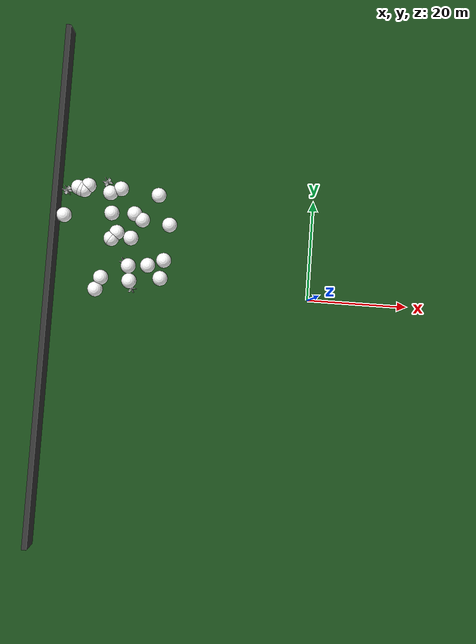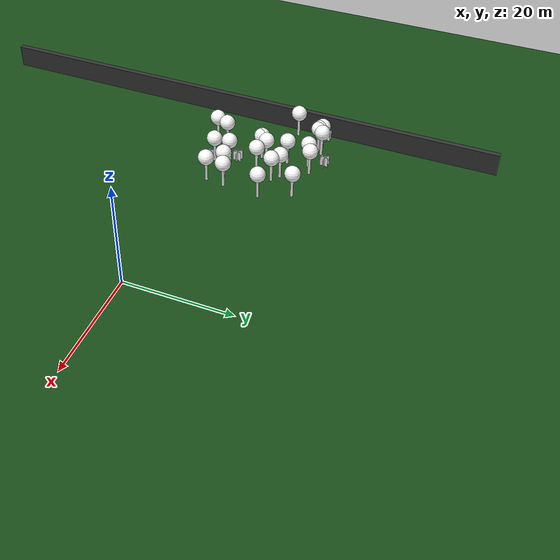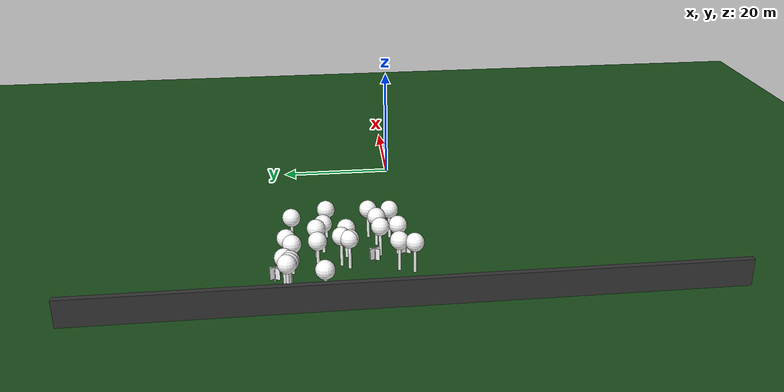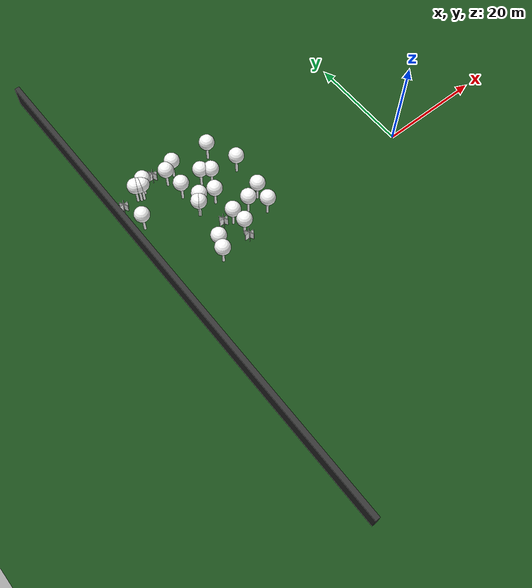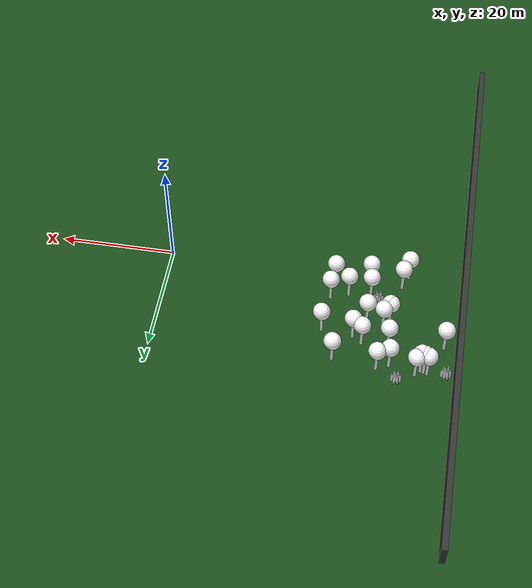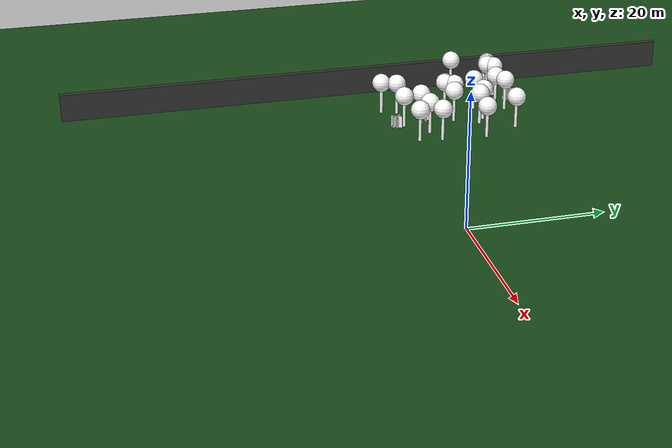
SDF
<sdf version="1.8">
 <world name="forest_world">
  <model name="fire_9">
   <pose>-41.93 21.05 1.00 0 0 0.00</pose>
   <static>true</static>
   <link name="fire_link">
    <visual name="fire_9_fire_main_0">
     <geometry><box><size>1.80 0.10 2.00</size></box></geometry>
     <material>
      <ambient>0.7 0.35 0.0 1</ambient>
      <diffuse>1 1 1 1</diffuse>
      <specular>0 0 0 1</specular>
      <emissive>0 0 0 1</emissive>
      <pbr>
       <metal><albedo_map>textures/fire.png</albedo_map><metalness>0.0</metalness><roughness>0.6</roughness></metal>
      </pbr>
     </material>
     <transparency>0.0</transparency>
     <cast_shadows>false</cast_shadows>
    </visual>
    <visual name="fire_9_fire_60_1">
     <pose>0.00 0.00 0.10 0 0 1.05</pose>
     <geometry><box><size>1.80 0.10 2.00</size></box></geometry>
     <material>
      <ambient>0.7 0.35 0.0 1</ambient>
      <diffuse>1 1 1 1</diffuse>
      <specular>0 0 0 1</specular>
      <emissive>0 0 0 1</emissive>
      <pbr>
       <metal><albedo_map>textures/fire.png</albedo_map><metalness>0.0</metalness><roughness>0.6</roughness></metal>
      </pbr>
     </material>
     <transparency>0.0</transparency>
     <cast_shadows>false</cast_shadows>
    </visual>
    <visual name="fire_9_fire_120_2">
     <pose>0.00 0.00 0.20 0 0 2.09</pose>
     <geometry><box><size>1.80 0.10 2.00</size></box></geometry>
     <material>
      <ambient>0.7 0.35 0.0 1</ambient>
      <diffuse>1 1 1 1</diffuse>
      <specular>0 0 0 1</specular>
      <emissive>0 0 0 1</emissive>
      <pbr>
       <metal><albedo_map>textures/fire.png</albedo_map><metalness>0.0</metalness><roughness>0.6</roughness></metal>
      </pbr>
     </material>
     <transparency>0.0</transparency>
     <cast_shadows>false</cast_shadows>
    </visual>
    <light type="point" name="fire_9_light_0">
     <pose>0.40 0.00 0.50 0 0 0</pose>
     <diffuse>1.0 0.7 0.3 1</diffuse>
     <specular>1.0 0.8 0.3 1</specular>
     <intensity>2</intensity>
     <attenuation>
      <range>2</range>
      <constant>0.1</constant>
      <linear>0.05</linear>
      <quadratic>0.02</quadratic>
     </attenuation>
     <cast_shadows>false</cast_shadows>
    </light>
    <light type="point" name="fire_9_light_1">
     <pose>-0.20 0.35 0.50 0 0 0</pose>
     <diffuse>1.0 0.7 0.3 1</diffuse>
     <specular>1.0 0.8 0.3 1</specular>
     <intensity>2</intensity>
     <attenuation>
      <range>2</range>
      <constant>0.1</constant>
      <linear>0.05</linear>
      <quadratic>0.02</quadratic>
     </attenuation>
     <cast_shadows>false</cast_shadows>
    </light>
    <light type="point" name="fire_9_light_2">
     <pose>-0.20 -0.35 0.50 0 0 0</pose>
     <diffuse>1.0 0.7 0.3 1</diffuse>
     <specular>1.0 0.8 0.3 1</specular>
     <intensity>2</intensity>
     <attenuation>
      <range>2</range>
      <constant>0.1</constant>
      <linear>0.05</linear>
      <quadratic>0.02</quadratic>
     </attenuation>
     <cast_shadows>false</cast_shadows>
    </light>
   </link>
   <plugin filename="libignition-gazebo-pose-publisher-system.so" name="ignition::gazebo::systems::PosePublisher">
    <frame_id>world</frame_id>
    <publish_link_pose>true</publish_link_pose>
    <use_pose_vector_msg>true</use_pose_vector_msg>
    <static_publisher>true</static_publisher>
    <static_update_frequency>1</static_update_frequency>
   </plugin>
  </model>
  <model name="fire_13">
   <pose>-37.36 5.14 1.00 0 0 0.00</pose>
   <static>true</static>
   <link name="fire_link">
    <visual name="fire_13_fire_main_0">
     <geometry><box><size>1.80 0.10 2.00</size></box></geometry>
     <material>
      <ambient>0.7 0.35 0.0 1</ambient>
      <diffuse>1 1 1 1</diffuse>
      <specular>0 0 0 1</specular>
      <emissive>0 0 0 1</emissive>
      <pbr>
       <metal><albedo_map>textures/fire.png</albedo_map><metalness>0.0</metalness><roughness>0.6</roughness></metal>
      </pbr>
     </material>
     <transparency>0.0</transparency>
     <cast_shadows>false</cast_shadows>
    </visual>
    <visual name="fire_13_fire_60_1">
     <pose>0.00 0.00 0.10 0 0 1.05</pose>
     <geometry><box><size>1.80 0.10 2.00</size></box></geometry>
     <material>
      <ambient>0.7 0.35 0.0 1</ambient>
      <diffuse>1 1 1 1</diffuse>
      <specular>0 0 0 1</specular>
      <emissive>0 0 0 1</emissive>
      <pbr>
       <metal><albedo_map>textures/fire.png</albedo_map><metalness>0.0</metalness><roughness>0.6</roughness></metal>
      </pbr>
     </material>
     <transparency>0.0</transparency>
     <cast_shadows>false</cast_shadows>
    </visual>
    <visual name="fire_13_fire_120_2">
     <pose>0.00 0.00 0.20 0 0 2.09</pose>
     <geometry><box><size>1.80 0.10 2.00</size></box></geometry>
     <material>
      <ambient>0.7 0.35 0.0 1</ambient>
      <diffuse>1 1 1 1</diffuse>
      <specular>0 0 0 1</specular>
      <emissive>0 0 0 1</emissive>
      <pbr>
       <metal><albedo_map>textures/fire.png</albedo_map><metalness>0.0</metalness><roughness>0.6</roughness></metal>
      </pbr>
     </material>
     <transparency>0.0</transparency>
     <cast_shadows>false</cast_shadows>
    </visual>
    <light type="point" name="fire_13_light_0">
     <pose>0.40 0.00 0.50 0 0 0</pose>
     <diffuse>1.0 0.7 0.3 1</diffuse>
     <specular>1.0 0.8 0.3 1</specular>
     <intensity>2</intensity>
     <attenuation>
      <range>2</range>
      <constant>0.1</constant>
      <linear>0.05</linear>
      <quadratic>0.02</quadratic>
     </attenuation>
     <cast_shadows>false</cast_shadows>
    </light>
    <light type="point" name="fire_13_light_1">
     <pose>-0.20 0.35 0.50 0 0 0</pose>
     <diffuse>1.0 0.7 0.3 1</diffuse>
     <specular>1.0 0.8 0.3 1</specular>
     <intensity>2</intensity>
     <attenuation>
      <range>2</range>
      <constant>0.1</constant>
      <linear>0.05</linear>
      <quadratic>0.02</quadratic>
     </attenuation>
     <cast_shadows>false</cast_shadows>
    </light>
    <light type="point" name="fire_13_light_2">
     <pose>-0.20 -0.35 0.50 0 0 0</pose>
     <diffuse>1.0 0.7 0.3 1</diffuse>
     <specular>1.0 0.8 0.3 1</specular>
     <intensity>2</intensity>
     <attenuation>
      <range>2</range>
      <constant>0.1</constant>
      <linear>0.05</linear>
      <quadratic>0.02</quadratic>
     </attenuation>
     <cast_shadows>false</cast_shadows>
    </light>
   </link>
   <plugin filename="libignition-gazebo-pose-publisher-system.so" name="ignition::gazebo::systems::PosePublisher">
    <frame_id>world</frame_id>
    <publish_link_pose>true</publish_link_pose>
    <use_pose_vector_msg>true</use_pose_vector_msg>
    <static_publisher>true</static_publisher>
    <static_update_frequency>1</static_update_frequency>
   </plugin>
  </model>
  <model name="fire_14">
   <pose>-35.51 -0.08 1.00 0 0 0.00</pose>
   <static>true</static>
   <link name="fire_link">
    <visual name="fire_14_fire_main_0">
     <geometry><box><size>1.80 0.10 2.00</size></box></geometry>
     <material>
      <ambient>0.7 0.35 0.0 1</ambient>
      <diffuse>1 1 1 1</diffuse>
      <specular>0 0 0 1</specular>
      <emissive>0 0 0 1</emissive>
      <pbr>
       <metal><albedo_map>textures/fire.png</albedo_map><metalness>0.0</metalness><roughness>0.6</roughness></metal>
      </pbr>
     </material>
     <transparency>0.0</transparency>
     <cast_shadows>false</cast_shadows>
    </visual>
    <visual name="fire_14_fire_60_1">
     <pose>0.00 0.00 0.10 0 0 1.05</pose>
     <geometry><box><size>1.80 0.10 2.00</size></box></geometry>
     <material>
      <ambient>0.7 0.35 0.0 1</ambient>
      <diffuse>1 1 1 1</diffuse>
      <specular>0 0 0 1</specular>
      <emissive>0 0 0 1</emissive>
      <pbr>
       <metal><albedo_map>textures/fire.png</albedo_map><metalness>0.0</metalness><roughness>0.6</roughness></metal>
      </pbr>
     </material>
     <transparency>0.0</transparency>
     <cast_shadows>false</cast_shadows>
    </visual>
    <visual name="fire_14_fire_120_2">
     <pose>0.00 0.00 0.20 0 0 2.09</pose>
     <geometry><box><size>1.80 0.10 2.00</size></box></geometry>
     <material>
      <ambient>0.7 0.35 0.0 1</ambient>
      <diffuse>1 1 1 1</diffuse>
      <specular>0 0 0 1</specular>
      <emissive>0 0 0 1</emissive>
      <pbr>
       <metal><albedo_map>textures/fire.png</albedo_map><metalness>0.0</metalness><roughness>0.6</roughness></metal>
      </pbr>
     </material>
     <transparency>0.0</transparency>
     <cast_shadows>false</cast_shadows>
    </visual>
    <light type="point" name="fire_14_light_0">
     <pose>0.40 0.00 0.50 0 0 0</pose>
     <diffuse>1.0 0.7 0.3 1</diffuse>
     <specular>1.0 0.8 0.3 1</specular>
     <intensity>2</intensity>
     <attenuation>
      <range>2</range>
      <constant>0.1</constant>
      <linear>0.05</linear>
      <quadratic>0.02</quadratic>
     </attenuation>
     <cast_shadows>false</cast_shadows>
    </light>
    <light type="point" name="fire_14_light_1">
     <pose>-0.20 0.35 0.50 0 0 0</pose>
     <diffuse>1.0 0.7 0.3 1</diffuse>
     <specular>1.0 0.8 0.3 1</specular>
     <intensity>2</intensity>
     <attenuation>
      <range>2</range>
      <constant>0.1</constant>
      <linear>0.05</linear>
      <quadratic>0.02</quadratic>
     </attenuation>
     <cast_shadows>false</cast_shadows>
    </light>
    <light type="point" name="fire_14_light_2">
     <pose>-0.20 -0.35 0.50 0 0 0</pose>
     <diffuse>1.0 0.7 0.3 1</diffuse>
     <specular>1.0 0.8 0.3 1</specular>
     <intensity>2</intensity>
     <attenuation>
      <range>2</range>
      <constant>0.1</constant>
      <linear>0.05</linear>
      <quadratic>0.02</quadratic>
     </attenuation>
     <cast_shadows>false</cast_shadows>
    </light>
   </link>
   <plugin filename="libignition-gazebo-pose-publisher-system.so" name="ignition::gazebo::systems::PosePublisher">
    <frame_id>world</frame_id>
    <publish_link_pose>true</publish_link_pose>
    <use_pose_vector_msg>true</use_pose_vector_msg>
    <static_publisher>true</static_publisher>
    <static_update_frequency>1</static_update_frequency>
   </plugin>
  </model>
  <model name="fire_43">
   <pose>-49.95 18.90 1.00 0 0 0.00</pose>
   <static>true</static>
   <link name="fire_link">
    <visual name="fire_43_fire_main_0">
     <geometry><box><size>1.80 0.10 2.00</size></box></geometry>
     <material>
      <ambient>0.7 0.35 0.0 1</ambient>
      <diffuse>1 1 1 1</diffuse>
      <specular>0 0 0 1</specular>
      <emissive>0 0 0 1</emissive>
      <pbr>
       <metal><albedo_map>textures/fire.png</albedo_map><metalness>0.0</metalness><roughness>0.6</roughness></metal>
      </pbr>
     </material>
     <transparency>0.0</transparency>
     <cast_shadows>false</cast_shadows>
    </visual>
    <visual name="fire_43_fire_60_1">
     <pose>0.00 0.00 0.10 0 0 1.05</pose>
     <geometry><box><size>1.80 0.10 2.00</size></box></geometry>
     <material>
      <ambient>0.7 0.35 0.0 1</ambient>
      <diffuse>1 1 1 1</diffuse>
      <specular>0 0 0 1</specular>
      <emissive>0 0 0 1</emissive>
      <pbr>
       <metal><albedo_map>textures/fire.png</albedo_map><metalness>0.0</metalness><roughness>0.6</roughness></metal>
      </pbr>
     </material>
     <transparency>0.0</transparency>
     <cast_shadows>false</cast_shadows>
    </visual>
    <visual name="fire_43_fire_120_2">
     <pose>0.00 0.00 0.20 0 0 2.09</pose>
     <geometry><box><size>1.80 0.10 2.00</size></box></geometry>
     <material>
      <ambient>0.7 0.35 0.0 1</ambient>
      <diffuse>1 1 1 1</diffuse>
      <specular>0 0 0 1</specular>
      <emissive>0 0 0 1</emissive>
      <pbr>
       <metal><albedo_map>textures/fire.png</albedo_map><metalness>0.0</metalness><roughness>0.6</roughness></metal>
      </pbr>
     </material>
     <transparency>0.0</transparency>
     <cast_shadows>false</cast_shadows>
    </visual>
    <light type="point" name="fire_43_light_0">
     <pose>0.40 0.00 0.50 0 0 0</pose>
     <diffuse>1.0 0.7 0.3 1</diffuse>
     <specular>1.0 0.8 0.3 1</specular>
     <intensity>2</intensity>
     <attenuation>
      <range>2</range>
      <constant>0.1</constant>
      <linear>0.05</linear>
      <quadratic>0.02</quadratic>
     </attenuation>
     <cast_shadows>false</cast_shadows>
    </light>
    <light type="point" name="fire_43_light_1">
     <pose>-0.20 0.35 0.50 0 0 0</pose>
     <diffuse>1.0 0.7 0.3 1</diffuse>
     <specular>1.0 0.8 0.3 1</specular>
     <intensity>2</intensity>
     <attenuation>
      <range>2</range>
      <constant>0.1</constant>
      <linear>0.05</linear>
      <quadratic>0.02</quadratic>
     </attenuation>
     <cast_shadows>false</cast_shadows>
    </light>
    <light type="point" name="fire_43_light_2">
     <pose>-0.20 -0.35 0.50 0 0 0</pose>
     <diffuse>1.0 0.7 0.3 1</diffuse>
     <specular>1.0 0.8 0.3 1</specular>
     <intensity>2</intensity>
     <attenuation>
      <range>2</range>
      <constant>0.1</constant>
      <linear>0.05</linear>
      <quadratic>0.02</quadratic>
     </attenuation>
     <cast_shadows>false</cast_shadows>
    </light>
   </link>
   <plugin filename="libignition-gazebo-pose-publisher-system.so" name="ignition::gazebo::systems::PosePublisher">
    <frame_id>world</frame_id>
    <publish_link_pose>true</publish_link_pose>
    <use_pose_vector_msg>true</use_pose_vector_msg>
    <static_publisher>true</static_publisher>
    <static_update_frequency>1</static_update_frequency>
   </plugin>
  </model>
  <model name="tree_simple493">
   <static>1</static>
   <link name="link">
    <pose>0 0 0.1 0 -0 0</pose>
    <collision name="collision_trunk">
     <pose>0 0 2 0 -0 0</pose>
     <geometry><cylinder><radius>0.25</radius><length>4</length></cylinder></geometry>
    </collision>
    <collision name="collision_treetop">
     <pose>0 0 5.2 0 -0 0</pose>
     <geometry><sphere><radius>1.5</radius></sphere></geometry>
    </collision>
    <visual name="trunk">
     <pose>0 0 2 0 -0 0</pose>
     <geometry><cylinder><radius>0.25</radius><length>4</length></cylinder></geometry>
     <material>
      <ambient>0.5 0.5 0.5 1</ambient>
      <diffuse>1.0 1.0 1.0 1</diffuse>
      <specular>0.0 0.0 0.0 1</specular>
      <pbr>
       <metal>
        <albedo_map>../worlds/textures/tree_simple_trunk.jpg</albedo_map>
        <metalness>0.0</metalness>
        <roughness>0.8</roughness>
       </metal>
      </pbr>
     </material>
    </visual>
    <visual name="treetop">
     <pose>0 0 5.2 0 -0 0</pose>
     <geometry><sphere><radius>1.5</radius></sphere></geometry>
     <material>
      <ambient>0.5 0.5 0.5 1</ambient>
      <diffuse>1.0 1.0 1.0 1</diffuse>
      <specular>0.0 0.0 0.0 1</specular>
      <pbr>
       <metal>
        <albedo_map>../worlds/textures/tree_simple_treetop.jpg</albedo_map>
        <metalness>0.0</metalness>
        <roughness>0.9</roughness>
       </metal>
      </pbr>
     </material>
    </visual>
   </link>
   <pose>-30.9686104206 18.3944298941 0 0 -0 0</pose>
  </model>
  <model name="tree_simple476">
   <static>1</static>
   <link name="link">
    <pose>0 0 0.1 0 -0 0</pose>
    <collision name="collision_trunk">
     <pose>0 0 2 0 -0 0</pose>
     <geometry><cylinder><radius>0.25</radius><length>4</length></cylinder></geometry>
    </collision>
    <collision name="collision_treetop">
     <pose>0 0 5.2 0 -0 0</pose>
     <geometry><sphere><radius>1.5</radius></sphere></geometry>
    </collision>
    <visual name="trunk">
     <pose>0 0 2 0 -0 0</pose>
     <geometry><cylinder><radius>0.25</radius><length>4</length></cylinder></geometry>
     <material>
      <ambient>0.5 0.5 0.5 1</ambient>
      <diffuse>1.0 1.0 1.0 1</diffuse>
      <specular>0.0 0.0 0.0 1</specular>
      <pbr>
       <metal>
        <albedo_map>../worlds/textures/tree_simple_trunk.jpg</albedo_map>
        <metalness>0.0</metalness>
        <roughness>0.8</roughness>
       </metal>
      </pbr>
     </material>
    </visual>
    <visual name="treetop">
     <pose>0 0 5.2 0 -0 0</pose>
     <geometry><sphere><radius>1.5</radius></sphere></geometry>
     <material>
      <ambient>0.5 0.5 0.5 1</ambient>
      <diffuse>1.0 1.0 1.0 1</diffuse>
      <specular>0.0 0.0 0.0 1</specular>
      <pbr>
       <metal>
        <albedo_map>../worlds/textures/tree_simple_treetop.jpg</albedo_map>
        <metalness>0.0</metalness>
        <roughness>0.9</roughness>
       </metal>
      </pbr>
     </material>
    </visual>
   </link>
   <pose>-40.490555579 18.243153787 0 0 -0 0</pose>
  </model>
  <model name="tree_simple467">
   <static>1</static>
   <link name="link">
    <pose>0 0 0.1 0 -0 0</pose>
    <collision name="collision_trunk">
     <pose>0 0 2 0 -0 0</pose>
     <geometry><cylinder><radius>0.25</radius><length>4</length></cylinder></geometry>
    </collision>
    <collision name="collision_treetop">
     <pose>0 0 5.2 0 -0 0</pose>
     <geometry><sphere><radius>1.5</radius></sphere></geometry>
    </collision>
    <visual name="trunk">
     <pose>0 0 2 0 -0 0</pose>
     <geometry><cylinder><radius>0.25</radius><length>4</length></cylinder></geometry>
     <material>
      <ambient>0.5 0.5 0.5 1</ambient>
      <diffuse>1.0 1.0 1.0 1</diffuse>
      <specular>0.0 0.0 0.0 1</specular>
      <pbr>
       <metal>
        <albedo_map>../worlds/textures/tree_simple_trunk.jpg</albedo_map>
        <metalness>0.0</metalness>
        <roughness>0.8</roughness>
       </metal>
      </pbr>
     </material>
    </visual>
    <visual name="treetop">
     <pose>0 0 5.2 0 -0 0</pose>
     <geometry><sphere><radius>1.5</radius></sphere></geometry>
     <material>
      <ambient>0.5 0.5 0.5 1</ambient>
      <diffuse>1.0 1.0 1.0 1</diffuse>
      <specular>0.0 0.0 0.0 1</specular>
      <pbr>
       <metal>
        <albedo_map>../worlds/textures/tree_simple_treetop.jpg</albedo_map>
        <metalness>0.0</metalness>
        <roughness>0.9</roughness>
       </metal>
      </pbr>
     </material>
    </visual>
   </link>
   <pose>-38.4435588212 19.1731926836 0 0 -0 0</pose>
  </model>
  <model name="tree_simple455">
   <static>1</static>
   <link name="link">
    <pose>0 0 0.1 0 -0 0</pose>
    <collision name="collision_trunk">
     <pose>0 0 2 0 -0 0</pose>
     <geometry><cylinder><radius>0.25</radius><length>4</length></cylinder></geometry>
    </collision>
    <collision name="collision_treetop">
     <pose>0 0 5.2 0 -0 0</pose>
     <geometry><sphere><radius>1.5</radius></sphere></geometry>
    </collision>
    <visual name="trunk">
     <pose>0 0 2 0 -0 0</pose>
     <geometry><cylinder><radius>0.25</radius><length>4</length></cylinder></geometry>
     <material>
      <ambient>0.5 0.5 0.5 1</ambient>
      <diffuse>1.0 1.0 1.0 1</diffuse>
      <specular>0.0 0.0 0.0 1</specular>
      <pbr>
       <metal>
        <albedo_map>../worlds/textures/tree_simple_trunk.jpg</albedo_map>
        <metalness>0.0</metalness>
        <roughness>0.8</roughness>
       </metal>
      </pbr>
     </material>
    </visual>
    <visual name="treetop">
     <pose>0 0 5.2 0 -0 0</pose>
     <geometry><sphere><radius>1.5</radius></sphere></geometry>
     <material>
      <ambient>0.5 0.5 0.5 1</ambient>
      <diffuse>1.0 1.0 1.0 1</diffuse>
      <specular>0.0 0.0 0.0 1</specular>
      <pbr>
       <metal>
        <albedo_map>../worlds/textures/tree_simple_treetop.jpg</albedo_map>
        <metalness>0.0</metalness>
        <roughness>0.9</roughness>
       </metal>
      </pbr>
     </material>
    </visual>
   </link>
   <pose>-32.1346913749 4.45623468988 0 0 -0 0</pose>
  </model>
  <model name="tree_simple437">
   <static>1</static>
   <link name="link">
    <pose>0 0 0.1 0 -0 0</pose>
    <collision name="collision_trunk">
     <pose>0 0 2 0 -0 0</pose>
     <geometry><cylinder><radius>0.25</radius><length>4</length></cylinder></geometry>
    </collision>
    <collision name="collision_treetop">
     <pose>0 0 5.2 0 -0 0</pose>
     <geometry><sphere><radius>1.5</radius></sphere></geometry>
    </collision>
    <visual name="trunk">
     <pose>0 0 2 0 -0 0</pose>
     <geometry><cylinder><radius>0.25</radius><length>4</length></cylinder></geometry>
     <material>
      <ambient>0.5 0.5 0.5 1</ambient>
      <diffuse>1.0 1.0 1.0 1</diffuse>
      <specular>0.0 0.0 0.0 1</specular>
      <pbr>
       <metal>
        <albedo_map>../worlds/textures/tree_simple_trunk.jpg</albedo_map>
        <metalness>0.0</metalness>
        <roughness>0.8</roughness>
       </metal>
      </pbr>
     </material>
    </visual>
    <visual name="treetop">
     <pose>0 0 5.2 0 -0 0</pose>
     <geometry><sphere><radius>1.5</radius></sphere></geometry>
     <material>
      <ambient>0.5 0.5 0.5 1</ambient>
      <diffuse>1.0 1.0 1.0 1</diffuse>
      <specular>0.0 0.0 0.0 1</specular>
      <pbr>
       <metal>
        <albedo_map>../worlds/textures/tree_simple_treetop.jpg</albedo_map>
        <metalness>0.0</metalness>
        <roughness>0.9</roughness>
       </metal>
      </pbr>
     </material>
    </visual>
   </link>
   <pose>-39.7170299969 9.24665194356 0 0 -0 0</pose>
  </model>
  <model name="tree_simple420">
   <static>1</static>
   <link name="link">
    <pose>0 0 0.1 0 -0 0</pose>
    <collision name="collision_trunk">
     <pose>0 0 2 0 -0 0</pose>
     <geometry><cylinder><radius>0.25</radius><length>4</length></cylinder></geometry>
    </collision>
    <collision name="collision_treetop">
     <pose>0 0 5.2 0 -0 0</pose>
     <geometry><sphere><radius>1.5</radius></sphere></geometry>
    </collision>
    <visual name="trunk">
     <pose>0 0 2 0 -0 0</pose>
     <geometry><cylinder><radius>0.25</radius><length>4</length></cylinder></geometry>
     <material>
      <ambient>0.5 0.5 0.5 1</ambient>
      <diffuse>1.0 1.0 1.0 1</diffuse>
      <specular>0.0 0.0 0.0 1</specular>
      <pbr>
       <metal>
        <albedo_map>../worlds/textures/tree_simple_trunk.jpg</albedo_map>
        <metalness>0.0</metalness>
        <roughness>0.8</roughness>
       </metal>
      </pbr>
     </material>
    </visual>
    <visual name="treetop">
     <pose>0 0 5.2 0 -0 0</pose>
     <geometry><sphere><radius>1.5</radius></sphere></geometry>
     <material>
      <ambient>0.5 0.5 0.5 1</ambient>
      <diffuse>1.0 1.0 1.0 1</diffuse>
      <specular>0.0 0.0 0.0 1</specular>
      <pbr>
       <metal>
        <albedo_map>../worlds/textures/tree_simple_treetop.jpg</albedo_map>
        <metalness>0.0</metalness>
        <roughness>0.9</roughness>
       </metal>
      </pbr>
     </material>
    </visual>
   </link>
   <pose>-46.8738530937 18.9140158148 0 0 -0 0</pose>
  </model>
  <model name="tree_simple383">
   <static>1</static>
   <link name="link">
    <pose>0 0 0.1 0 -0 0</pose>
    <collision name="collision_trunk">
     <pose>0 0 2 0 -0 0</pose>
     <geometry><cylinder><radius>0.25</radius><length>4</length></cylinder></geometry>
    </collision>
    <collision name="collision_treetop">
     <pose>0 0 5.2 0 -0 0</pose>
     <geometry><sphere><radius>1.5</radius></sphere></geometry>
    </collision>
    <visual name="trunk">
     <pose>0 0 2 0 -0 0</pose>
     <geometry><cylinder><radius>0.25</radius><length>4</length></cylinder></geometry>
     <material>
      <ambient>0.5 0.5 0.5 1</ambient>
      <diffuse>1.0 1.0 1.0 1</diffuse>
      <specular>0.0 0.0 0.0 1</specular>
      <pbr>
       <metal>
        <albedo_map>../worlds/textures/tree_simple_trunk.jpg</albedo_map>
        <metalness>0.0</metalness>
        <roughness>0.8</roughness>
       </metal>
      </pbr>
     </material>
    </visual>
    <visual name="treetop">
     <pose>0 0 5.2 0 -0 0</pose>
     <geometry><sphere><radius>1.5</radius></sphere></geometry>
     <material>
      <ambient>0.5 0.5 0.5 1</ambient>
      <diffuse>1.0 1.0 1.0 1</diffuse>
      <specular>0.0 0.0 0.0 1</specular>
      <pbr>
       <metal>
        <albedo_map>../worlds/textures/tree_simple_treetop.jpg</albedo_map>
        <metalness>0.0</metalness>
        <roughness>0.9</roughness>
       </metal>
      </pbr>
     </material>
    </visual>
   </link>
   <pose>-39.6589333601 9.20891740709 0 0 -0 0</pose>
  </model>
  <model name="tree_simple333">
   <static>1</static>
   <link name="link">
    <pose>0 0 0.1 0 -0 0</pose>
    <collision name="collision_trunk">
     <pose>0 0 2 0 -0 0</pose>
     <geometry><cylinder><radius>0.25</radius><length>4</length></cylinder></geometry>
    </collision>
    <collision name="collision_treetop">
     <pose>0 0 5.2 0 -0 0</pose>
     <geometry><sphere><radius>1.5</radius></sphere></geometry>
    </collision>
    <visual name="trunk">
     <pose>0 0 2 0 -0 0</pose>
     <geometry><cylinder><radius>0.25</radius><length>4</length></cylinder></geometry>
     <material>
      <ambient>0.5 0.5 0.5 1</ambient>
      <diffuse>1.0 1.0 1.0 1</diffuse>
      <specular>0.0 0.0 0.0 1</specular>
      <pbr>
       <metal>
        <albedo_map>../worlds/textures/tree_simple_trunk.jpg</albedo_map>
        <metalness>0.0</metalness>
        <roughness>0.8</roughness>
       </metal>
      </pbr>
     </material>
    </visual>
    <visual name="treetop">
     <pose>0 0 5.2 0 -0 0</pose>
     <geometry><sphere><radius>1.5</radius></sphere></geometry>
     <material>
      <ambient>0.5 0.5 0.5 1</ambient>
      <diffuse>1.0 1.0 1.0 1</diffuse>
      <specular>0.0 0.0 0.0 1</specular>
      <pbr>
       <metal>
        <albedo_map>../worlds/textures/tree_simple_treetop.jpg</albedo_map>
        <metalness>0.0</metalness>
        <roughness>0.9</roughness>
       </metal>
      </pbr>
     </material>
    </visual>
   </link>
   <pose>-39.9457212117 14.2708629915 0 0 -0 0</pose>
  </model>
  <model name="tree_simple289">
   <static>1</static>
   <link name="link">
    <pose>0 0 0.1 0 -0 0</pose>
    <collision name="collision_trunk">
     <pose>0 0 2 0 -0 0</pose>
     <geometry><cylinder><radius>0.25</radius><length>4</length></cylinder></geometry>
    </collision>
    <collision name="collision_treetop">
     <pose>0 0 5.2 0 -0 0</pose>
     <geometry><sphere><radius>1.5</radius></sphere></geometry>
    </collision>
    <visual name="trunk">
     <pose>0 0 2 0 -0 0</pose>
     <geometry><cylinder><radius>0.25</radius><length>4</length></cylinder></geometry>
     <material>
      <ambient>0.5 0.5 0.5 1</ambient>
      <diffuse>1.0 1.0 1.0 1</diffuse>
      <specular>0.0 0.0 0.0 1</specular>
      <pbr>
       <metal>
        <albedo_map>../worlds/textures/tree_simple_trunk.jpg</albedo_map>
        <metalness>0.0</metalness>
        <roughness>0.8</roughness>
       </metal>
      </pbr>
     </material>
    </visual>
    <visual name="treetop">
     <pose>0 0 5.2 0 -0 0</pose>
     <geometry><sphere><radius>1.5</radius></sphere></geometry>
     <material>
      <ambient>0.5 0.5 0.5 1</ambient>
      <diffuse>1.0 1.0 1.0 1</diffuse>
      <specular>0.0 0.0 0.0 1</specular>
      <pbr>
       <metal>
        <albedo_map>../worlds/textures/tree_simple_treetop.jpg</albedo_map>
        <metalness>0.0</metalness>
        <roughness>0.9</roughness>
       </metal>
      </pbr>
     </material>
    </visual>
   </link>
   <pose>-35.9302757768 4.10324936235 0 0 -0 0</pose>
  </model>
  <model name="tree_simple252">
   <static>1</static>
   <link name="link">
    <pose>0 0 0.1 0 -0 0</pose>
    <collision name="collision_trunk">
     <pose>0 0 2 0 -0 0</pose>
     <geometry><cylinder><radius>0.25</radius><length>4</length></cylinder></geometry>
    </collision>
    <collision name="collision_treetop">
     <pose>0 0 5.2 0 -0 0</pose>
     <geometry><sphere><radius>1.5</radius></sphere></geometry>
    </collision>
    <visual name="trunk">
     <pose>0 0 2 0 -0 0</pose>
     <geometry><cylinder><radius>0.25</radius><length>4</length></cylinder></geometry>
     <material>
      <ambient>0.5 0.5 0.5 1</ambient>
      <diffuse>1.0 1.0 1.0 1</diffuse>
      <specular>0.0 0.0 0.0 1</specular>
      <pbr>
       <metal>
        <albedo_map>../worlds/textures/tree_simple_trunk.jpg</albedo_map>
        <metalness>0.0</metalness>
        <roughness>0.8</roughness>
       </metal>
      </pbr>
     </material>
    </visual>
    <visual name="treetop">
     <pose>0 0 5.2 0 -0 0</pose>
     <geometry><sphere><radius>1.5</radius></sphere></geometry>
     <material>
      <ambient>0.5 0.5 0.5 1</ambient>
      <diffuse>1.0 1.0 1.0 1</diffuse>
      <specular>0.0 0.0 0.0 1</specular>
      <pbr>
       <metal>
        <albedo_map>../worlds/textures/tree_simple_treetop.jpg</albedo_map>
        <metalness>0.0</metalness>
        <roughness>0.9</roughness>
       </metal>
      </pbr>
     </material>
    </visual>
   </link>
   <pose>-49.2857495086 13.2768548842 0 0 -0 0</pose>
  </model>
  <model name="tree_simple231">
   <static>1</static>
   <link name="link">
    <pose>0 0 0.1 0 -0 0</pose>
    <collision name="collision_trunk">
     <pose>0 0 2 0 -0 0</pose>
     <geometry><cylinder><radius>0.25</radius><length>4</length></cylinder></geometry>
    </collision>
    <collision name="collision_treetop">
     <pose>0 0 5.2 0 -0 0</pose>
     <geometry><sphere><radius>1.5</radius></sphere></geometry>
    </collision>
    <visual name="trunk">
     <pose>0 0 2 0 -0 0</pose>
     <geometry><cylinder><radius>0.25</radius><length>4</length></cylinder></geometry>
     <material>
      <ambient>0.5 0.5 0.5 1</ambient>
      <diffuse>1.0 1.0 1.0 1</diffuse>
      <specular>0.0 0.0 0.0 1</specular>
      <pbr>
       <metal>
        <albedo_map>../worlds/textures/tree_simple_trunk.jpg</albedo_map>
        <metalness>0.0</metalness>
        <roughness>0.8</roughness>
       </metal>
      </pbr>
     </material>
    </visual>
    <visual name="treetop">
     <pose>0 0 5.2 0 -0 0</pose>
     <geometry><sphere><radius>1.5</radius></sphere></geometry>
     <material>
      <ambient>0.5 0.5 0.5 1</ambient>
      <diffuse>1.0 1.0 1.0 1</diffuse>
      <specular>0.0 0.0 0.0 1</specular>
      <pbr>
       <metal>
        <albedo_map>../worlds/textures/tree_simple_treetop.jpg</albedo_map>
        <metalness>0.0</metalness>
        <roughness>0.9</roughness>
       </metal>
      </pbr>
     </material>
    </visual>
   </link>
   <pose>-35.8338732543 9.59486776234 0 0 -0 0</pose>
  </model>
  <model name="tree_simple228">
   <static>1</static>
   <link name="link">
    <pose>0 0 0.1 0 -0 0</pose>
    <collision name="collision_trunk">
     <pose>0 0 2 0 -0 0</pose>
     <geometry><cylinder><radius>0.25</radius><length>4</length></cylinder></geometry>
    </collision>
    <collision name="collision_treetop">
     <pose>0 0 5.2 0 -0 0</pose>
     <geometry><sphere><radius>1.5</radius></sphere></geometry>
    </collision>
    <visual name="trunk">
     <pose>0 0 2 0 -0 0</pose>
     <geometry><cylinder><radius>0.25</radius><length>4</length></cylinder></geometry>
     <material>
      <ambient>0.5 0.5 0.5 1</ambient>
      <diffuse>1.0 1.0 1.0 1</diffuse>
      <specular>0.0 0.0 0.0 1</specular>
      <pbr>
       <metal>
        <albedo_map>../worlds/textures/tree_simple_trunk.jpg</albedo_map>
        <metalness>0.0</metalness>
        <roughness>0.8</roughness>
       </metal>
      </pbr>
     </material>
    </visual>
    <visual name="treetop">
     <pose>0 0 5.2 0 -0 0</pose>
     <geometry><sphere><radius>1.5</radius></sphere></geometry>
     <material>
      <ambient>0.5 0.5 0.5 1</ambient>
      <diffuse>1.0 1.0 1.0 1</diffuse>
      <specular>0.0 0.0 0.0 1</specular>
      <pbr>
       <metal>
        <albedo_map>../worlds/textures/tree_simple_treetop.jpg</albedo_map>
        <metalness>0.0</metalness>
        <roughness>0.9</roughness>
       </metal>
      </pbr>
     </material>
    </visual>
   </link>
   <pose>-28.4416918888 12.679152397 0 0 -0 0</pose>
  </model>
  <model name="tree_simple218">
   <static>1</static>
   <link name="link">
    <pose>0 0 0.1 0 -0 0</pose>
    <collision name="collision_trunk">
     <pose>0 0 2 0 -0 0</pose>
     <geometry><cylinder><radius>0.25</radius><length>4</length></cylinder></geometry>
    </collision>
    <collision name="collision_treetop">
     <pose>0 0 5.2 0 -0 0</pose>
     <geometry><sphere><radius>1.5</radius></sphere></geometry>
    </collision>
    <visual name="trunk">
     <pose>0 0 2 0 -0 0</pose>
     <geometry><cylinder><radius>0.25</radius><length>4</length></cylinder></geometry>
     <material>
      <ambient>0.5 0.5 0.5 1</ambient>
      <diffuse>1.0 1.0 1.0 1</diffuse>
      <specular>0.0 0.0 0.0 1</specular>
      <pbr>
       <metal>
        <albedo_map>../worlds/textures/tree_simple_trunk.jpg</albedo_map>
        <metalness>0.0</metalness>
        <roughness>0.8</roughness>
       </metal>
      </pbr>
     </material>
    </visual>
    <visual name="treetop">
     <pose>0 0 5.2 0 -0 0</pose>
     <geometry><sphere><radius>1.5</radius></sphere></geometry>
     <material>
      <ambient>0.5 0.5 0.5 1</ambient>
      <diffuse>1.0 1.0 1.0 1</diffuse>
      <specular>0.0 0.0 0.0 1</specular>
      <pbr>
       <metal>
        <albedo_map>../worlds/textures/tree_simple_treetop.jpg</albedo_map>
        <metalness>0.0</metalness>
        <roughness>0.9</roughness>
       </metal>
      </pbr>
     </material>
    </visual>
   </link>
   <pose>-35.4441673734 14.4296379782 0 0 -0 0</pose>
  </model>
  <model name="tree_simple209">
   <static>1</static>
   <link name="link">
    <pose>0 0 0.1 0 -0 0</pose>
    <collision name="collision_trunk">
     <pose>0 0 2 0 -0 0</pose>
     <geometry><cylinder><radius>0.25</radius><length>4</length></cylinder></geometry>
    </collision>
    <collision name="collision_treetop">
     <pose>0 0 5.2 0 -0 0</pose>
     <geometry><sphere><radius>1.5</radius></sphere></geometry>
    </collision>
    <visual name="trunk">
     <pose>0 0 2 0 -0 0</pose>
     <geometry><cylinder><radius>0.25</radius><length>4</length></cylinder></geometry>
     <material>
      <ambient>0.5 0.5 0.5 1</ambient>
      <diffuse>1.0 1.0 1.0 1</diffuse>
      <specular>0.0 0.0 0.0 1</specular>
      <pbr>
       <metal>
        <albedo_map>../worlds/textures/tree_simple_trunk.jpg</albedo_map>
        <metalness>0.0</metalness>
        <roughness>0.8</roughness>
       </metal>
      </pbr>
     </material>
    </visual>
    <visual name="treetop">
     <pose>0 0 5.2 0 -0 0</pose>
     <geometry><sphere><radius>1.5</radius></sphere></geometry>
     <material>
      <ambient>0.5 0.5 0.5 1</ambient>
      <diffuse>1.0 1.0 1.0 1</diffuse>
      <specular>0.0 0.0 0.0 1</specular>
      <pbr>
       <metal>
        <albedo_map>../worlds/textures/tree_simple_treetop.jpg</albedo_map>
        <metalness>0.0</metalness>
        <roughness>0.9</roughness>
       </metal>
      </pbr>
     </material>
    </visual>
   </link>
   <pose>-33.8233046725 13.2827932197 0 0 -0 0</pose>
  </model>
  <model name="tree_simple199">
   <static>1</static>
   <link name="link">
    <pose>0 0 0.1 0 -0 0</pose>
    <collision name="collision_trunk">
     <pose>0 0 2 0 -0 0</pose>
     <geometry><cylinder><radius>0.25</radius><length>4</length></cylinder></geometry>
    </collision>
    <collision name="collision_treetop">
     <pose>0 0 5.2 0 -0 0</pose>
     <geometry><sphere><radius>1.5</radius></sphere></geometry>
    </collision>
    <visual name="trunk">
     <pose>0 0 2 0 -0 0</pose>
     <geometry><cylinder><radius>0.25</radius><length>4</length></cylinder></geometry>
     <material>
      <ambient>0.5 0.5 0.5 1</ambient>
      <diffuse>1.0 1.0 1.0 1</diffuse>
      <specular>0.0 0.0 0.0 1</specular>
      <pbr>
       <metal>
        <albedo_map>../worlds/textures/tree_simple_trunk.jpg</albedo_map>
        <metalness>0.0</metalness>
        <roughness>0.8</roughness>
       </metal>
      </pbr>
     </material>
    </visual>
    <visual name="treetop">
     <pose>0 0 5.2 0 -0 0</pose>
     <geometry><sphere><radius>1.5</radius></sphere></geometry>
     <material>
      <ambient>0.5 0.5 0.5 1</ambient>
      <diffuse>1.0 1.0 1.0 1</diffuse>
      <specular>0.0 0.0 0.0 1</specular>
      <pbr>
       <metal>
        <albedo_map>../worlds/textures/tree_simple_treetop.jpg</albedo_map>
        <metalness>0.0</metalness>
        <roughness>0.9</roughness>
       </metal>
      </pbr>
     </material>
    </visual>
   </link>
   <pose>-38.6601694544 10.5136228042 0 0 -0 0</pose>
  </model>
  <model name="tree_simple162">
   <static>1</static>
   <link name="link">
    <pose>0 0 0.1 0 -0 0</pose>
    <collision name="collision_trunk">
     <pose>0 0 2 0 -0 0</pose>
     <geometry><cylinder><radius>0.25</radius><length>4</length></cylinder></geometry>
    </collision>
    <collision name="collision_treetop">
     <pose>0 0 5.2 0 -0 0</pose>
     <geometry><sphere><radius>1.5</radius></sphere></geometry>
    </collision>
    <visual name="trunk">
     <pose>0 0 2 0 -0 0</pose>
     <geometry><cylinder><radius>0.25</radius><length>4</length></cylinder></geometry>
     <material>
      <ambient>0.5 0.5 0.5 1</ambient>
      <diffuse>1.0 1.0 1.0 1</diffuse>
      <specular>0.0 0.0 0.0 1</specular>
      <pbr>
       <metal>
        <albedo_map>../worlds/textures/tree_simple_trunk.jpg</albedo_map>
        <metalness>0.0</metalness>
        <roughness>0.8</roughness>
       </metal>
      </pbr>
     </material>
    </visual>
    <visual name="treetop">
     <pose>0 0 5.2 0 -0 0</pose>
     <geometry><sphere><radius>1.5</radius></sphere></geometry>
     <material>
      <ambient>0.5 0.5 0.5 1</ambient>
      <diffuse>1.0 1.0 1.0 1</diffuse>
      <specular>0.0 0.0 0.0 1</specular>
      <pbr>
       <metal>
        <albedo_map>../worlds/textures/tree_simple_treetop.jpg</albedo_map>
        <metalness>0.0</metalness>
        <roughness>0.9</roughness>
       </metal>
      </pbr>
     </material>
    </visual>
   </link>
   <pose>-29.0785466271 5.63251358266 0 0 -0 0</pose>
  </model>
  <model name="tree_simple135">
   <static>1</static>
   <link name="link">
    <pose>0 0 0.1 0 -0 0</pose>
    <collision name="collision_trunk">
     <pose>0 0 2 0 -0 0</pose>
     <geometry><cylinder><radius>0.25</radius><length>4</length></cylinder></geometry>
    </collision>
    <collision name="collision_treetop">
     <pose>0 0 5.2 0 -0 0</pose>
     <geometry><sphere><radius>1.5</radius></sphere></geometry>
    </collision>
    <visual name="trunk">
     <pose>0 0 2 0 -0 0</pose>
     <geometry><cylinder><radius>0.25</radius><length>4</length></cylinder></geometry>
     <material>
      <ambient>0.5 0.5 0.5 1</ambient>
      <diffuse>1.0 1.0 1.0 1</diffuse>
      <specular>0.0 0.0 0.0 1</specular>
      <pbr>
       <metal>
        <albedo_map>../worlds/textures/tree_simple_trunk.jpg</albedo_map>
        <metalness>0.0</metalness>
        <roughness>0.8</roughness>
       </metal>
      </pbr>
     </material>
    </visual>
    <visual name="treetop">
     <pose>0 0 5.2 0 -0 0</pose>
     <geometry><sphere><radius>1.5</radius></sphere></geometry>
     <material>
      <ambient>0.5 0.5 0.5 1</ambient>
      <diffuse>1.0 1.0 1.0 1</diffuse>
      <specular>0.0 0.0 0.0 1</specular>
      <pbr>
       <metal>
        <albedo_map>../worlds/textures/tree_simple_treetop.jpg</albedo_map>
        <metalness>0.0</metalness>
        <roughness>0.9</roughness>
       </metal>
      </pbr>
     </material>
    </visual>
   </link>
   <pose>-29.5483415339 2.06641345063 0 0 -0 0</pose>
  </model>
  <model name="tree_simple127">
   <static>1</static>
   <link name="link">
    <pose>0 0 0.1 0 -0 0</pose>
    <collision name="collision_trunk">
     <pose>0 0 2 0 -0 0</pose>
     <geometry><cylinder><radius>0.25</radius><length>4</length></cylinder></geometry>
    </collision>
    <collision name="collision_treetop">
     <pose>0 0 5.2 0 -0 0</pose>
     <geometry><sphere><radius>1.5</radius></sphere></geometry>
    </collision>
    <visual name="trunk">
     <pose>0 0 2 0 -0 0</pose>
     <geometry><cylinder><radius>0.25</radius><length>4</length></cylinder></geometry>
     <material>
      <ambient>0.5 0.5 0.5 1</ambient>
      <diffuse>1.0 1.0 1.0 1</diffuse>
      <specular>0.0 0.0 0.0 1</specular>
      <pbr>
       <metal>
        <albedo_map>../worlds/textures/tree_simple_trunk.jpg</albedo_map>
        <metalness>0.0</metalness>
        <roughness>0.8</roughness>
       </metal>
      </pbr>
     </material>
    </visual>
    <visual name="treetop">
     <pose>0 0 5.2 0 -0 0</pose>
     <geometry><sphere><radius>1.5</radius></sphere></geometry>
     <material>
      <ambient>0.5 0.5 0.5 1</ambient>
      <diffuse>1.0 1.0 1.0 1</diffuse>
      <specular>0.0 0.0 0.0 1</specular>
      <pbr>
       <metal>
        <albedo_map>../worlds/textures/tree_simple_treetop.jpg</albedo_map>
        <metalness>0.0</metalness>
        <roughness>0.9</roughness>
       </metal>
      </pbr>
     </material>
    </visual>
   </link>
   <pose>-45.7202624904 18.511982554 0 0 -0 0</pose>
  </model>
  <model name="tree_simple122">
   <static>1</static>
   <link name="link">
    <pose>0 0 0.1 0 -0 0</pose>
    <collision name="collision_trunk">
     <pose>0 0 2 0 -0 0</pose>
     <geometry><cylinder><radius>0.25</radius><length>4</length></cylinder></geometry>
    </collision>
    <collision name="collision_treetop">
     <pose>0 0 5.2 0 -0 0</pose>
     <geometry><sphere><radius>1.5</radius></sphere></geometry>
    </collision>
    <visual name="trunk">
     <pose>0 0 2 0 -0 0</pose>
     <geometry><cylinder><radius>0.25</radius><length>4</length></cylinder></geometry>
     <material>
      <ambient>0.5 0.5 0.5 1</ambient>
      <diffuse>1.0 1.0 1.0 1</diffuse>
      <specular>0.0 0.0 0.0 1</specular>
      <pbr>
       <metal>
        <albedo_map>../worlds/textures/tree_simple_trunk.jpg</albedo_map>
        <metalness>0.0</metalness>
        <roughness>0.8</roughness>
       </metal>
      </pbr>
     </material>
    </visual>
    <visual name="treetop">
     <pose>0 0 5.2 0 -0 0</pose>
     <geometry><sphere><radius>1.5</radius></sphere></geometry>
     <material>
      <ambient>0.5 0.5 0.5 1</ambient>
      <diffuse>1.0 1.0 1.0 1</diffuse>
      <specular>0.0 0.0 0.0 1</specular>
      <pbr>
       <metal>
        <albedo_map>../worlds/textures/tree_simple_treetop.jpg</albedo_map>
        <metalness>0.0</metalness>
        <roughness>0.9</roughness>
       </metal>
      </pbr>
     </material>
    </visual>
   </link>
   <pose>-44.9070413792 19.4157710588 0 0 -0 0</pose>
  </model>
  <model name="tree_simple117">
   <static>1</static>
   <link name="link">
    <pose>0 0 0.1 0 -0 0</pose>
    <collision name="collision_trunk">
     <pose>0 0 2 0 -0 0</pose>
     <geometry><cylinder><radius>0.25</radius><length>4</length></cylinder></geometry>
    </collision>
    <collision name="collision_treetop">
     <pose>0 0 5.2 0 -0 0</pose>
     <geometry><sphere><radius>1.5</radius></sphere></geometry>
    </collision>
    <visual name="trunk">
     <pose>0 0 2 0 -0 0</pose>
     <geometry><cylinder><radius>0.25</radius><length>4</length></cylinder></geometry>
     <material>
      <ambient>0.5 0.5 0.5 1</ambient>
      <diffuse>1.0 1.0 1.0 1</diffuse>
      <specular>0.0 0.0 0.0 1</specular>
      <pbr>
       <metal>
        <albedo_map>../worlds/textures/tree_simple_trunk.jpg</albedo_map>
        <metalness>0.0</metalness>
        <roughness>0.8</roughness>
       </metal>
      </pbr>
     </material>
    </visual>
    <visual name="treetop">
     <pose>0 0 5.2 0 -0 0</pose>
     <geometry><sphere><radius>1.5</radius></sphere></geometry>
     <material>
      <ambient>0.5 0.5 0.5 1</ambient>
      <diffuse>1.0 1.0 1.0 1</diffuse>
      <specular>0.0 0.0 0.0 1</specular>
      <pbr>
       <metal>
        <albedo_map>../worlds/textures/tree_simple_treetop.jpg</albedo_map>
        <metalness>0.0</metalness>
        <roughness>0.9</roughness>
       </metal>
      </pbr>
     </material>
    </visual>
   </link>
   <pose>-46.2827238601 18.6501285005 0 0 -0 0</pose>
  </model>
  <model name="tree_simple105">
   <static>1</static>
   <link name="link">
    <pose>0 0 0.1 0 -0 0</pose>
    <collision name="collision_trunk">
     <pose>0 0 2 0 -0 0</pose>
     <geometry><cylinder><radius>0.25</radius><length>4</length></cylinder></geometry>
    </collision>
    <collision name="collision_treetop">
     <pose>0 0 5.2 0 -0 0</pose>
     <geometry><sphere><radius>1.5</radius></sphere></geometry>
    </collision>
    <visual name="trunk">
     <pose>0 0 2 0 -0 0</pose>
     <geometry><cylinder><radius>0.25</radius><length>4</length></cylinder></geometry>
     <material>
      <ambient>0.5 0.5 0.5 1</ambient>
      <diffuse>1.0 1.0 1.0 1</diffuse>
      <specular>0.0 0.0 0.0 1</specular>
      <pbr>
       <metal>
        <albedo_map>../worlds/textures/tree_simple_trunk.jpg</albedo_map>
        <metalness>0.0</metalness>
        <roughness>0.8</roughness>
       </metal>
      </pbr>
     </material>
    </visual>
    <visual name="treetop">
     <pose>0 0 5.2 0 -0 0</pose>
     <geometry><sphere><radius>1.5</radius></sphere></geometry>
     <material>
      <ambient>0.5 0.5 0.5 1</ambient>
      <diffuse>1.0 1.0 1.0 1</diffuse>
      <specular>0.0 0.0 0.0 1</specular>
      <pbr>
       <metal>
        <albedo_map>../worlds/textures/tree_simple_treetop.jpg</albedo_map>
        <metalness>0.0</metalness>
        <roughness>0.9</roughness>
       </metal>
      </pbr>
     </material>
    </visual>
   </link>
   <pose>-41.1351668554 1.47782508111 0 0 -0 0</pose>
  </model>
  <model name="tree_simple100">
   <static>1</static>
   <link name="link">
    <pose>0 0 0.1 0 -0 0</pose>
    <collision name="collision_trunk">
     <pose>0 0 2 0 -0 0</pose>
     <geometry><cylinder><radius>0.25</radius><length>4</length></cylinder></geometry>
    </collision>
    <collision name="collision_treetop">
     <pose>0 0 5.2 0 -0 0</pose>
     <geometry><sphere><radius>1.5</radius></sphere></geometry>
    </collision>
    <visual name="trunk">
     <pose>0 0 2 0 -0 0</pose>
     <geometry><cylinder><radius>0.25</radius><length>4</length></cylinder></geometry>
     <material>
      <ambient>0.5 0.5 0.5 1</ambient>
      <diffuse>1.0 1.0 1.0 1</diffuse>
      <specular>0.0 0.0 0.0 1</specular>
      <pbr>
       <metal>
        <albedo_map>../worlds/textures/tree_simple_trunk.jpg</albedo_map>
        <metalness>0.0</metalness>
        <roughness>0.8</roughness>
       </metal>
      </pbr>
     </material>
    </visual>
    <visual name="treetop">
     <pose>0 0 5.2 0 -0 0</pose>
     <geometry><sphere><radius>1.5</radius></sphere></geometry>
     <material>
      <ambient>0.5 0.5 0.5 1</ambient>
      <diffuse>1.0 1.0 1.0 1</diffuse>
      <specular>0.0 0.0 0.0 1</specular>
      <pbr>
       <metal>
        <albedo_map>../worlds/textures/tree_simple_treetop.jpg</albedo_map>
        <metalness>0.0</metalness>
        <roughness>0.9</roughness>
       </metal>
      </pbr>
     </material>
    </visual>
   </link>
   <pose>-42.0523955646 -0.870595497769 0 0 -0 0</pose>
  </model>
  <model name="tree_simple30">
   <static>1</static>
   <link name="link">
    <pose>0 0 0.1 0 -0 0</pose>
    <collision name="collision_trunk">
     <pose>0 0 2 0 -0 0</pose>
     <geometry><cylinder><radius>0.25</radius><length>4</length></cylinder></geometry>
    </collision>
    <collision name="collision_treetop">
     <pose>0 0 5.2 0 -0 0</pose>
     <geometry><sphere><radius>1.5</radius></sphere></geometry>
    </collision>
    <visual name="trunk">
     <pose>0 0 2 0 -0 0</pose>
     <geometry><cylinder><radius>0.25</radius><length>4</length></cylinder></geometry>
     <material>
      <ambient>0.5 0.5 0.5 1</ambient>
      <diffuse>1.0 1.0 1.0 1</diffuse>
      <specular>0.0 0.0 0.0 1</specular>
      <pbr>
       <metal>
        <albedo_map>../worlds/textures/tree_simple_trunk.jpg</albedo_map>
        <metalness>0.0</metalness>
        <roughness>0.8</roughness>
       </metal>
      </pbr>
     </material>
    </visual>
    <visual name="treetop">
     <pose>0 0 5.2 0 -0 0</pose>
     <geometry><sphere><radius>1.5</radius></sphere></geometry>
     <material>
      <ambient>0.5 0.5 0.5 1</ambient>
      <diffuse>1.0 1.0 1.0 1</diffuse>
      <specular>0.0 0.0 0.0 1</specular>
      <pbr>
       <metal>
        <albedo_map>../worlds/textures/tree_simple_treetop.jpg</albedo_map>
        <metalness>0.0</metalness>
        <roughness>0.9</roughness>
       </metal>
      </pbr>
     </material>
    </visual>
   </link>
   <pose>-35.5727327485 1.19199426463 0 0 -0 0</pose>
  </model>
  <model name="ground_plane">
   <static>true</static>
   <link name="link">
    <collision name="collision">
     <geometry><mesh><uri>../worlds/textures/grass_plane.dae</uri><scale>1 1 1</scale></mesh></geometry>
     <surface><friction><ode><mu>1</mu><mu2>1</mu2></ode></friction></surface>
    </collision>
    <visual name="snow">
     <cast_shadows>false</cast_shadows>
     <geometry><mesh><uri>../worlds/textures/grass_plane.dae</uri><scale>1 1 1</scale></mesh></geometry>
     <material>
      <ambient>0.05 0.2 0.05 1</ambient>
      <diffuse>0.1 0.3 0.1 1</diffuse>
      <specular>0.05 0.05 0.05 1</specular>
     </material>
    </visual>
   </link>
  </model>
  <model name="wall_west">
   <static>true</static>
   <pose>-51.8 0 2 0 0 0</pose>
   <link name="link">
    <collision name="collision"><geometry><box><size>1 103.8 5</size></box></geometry></collision>
    <visual name="visual">
     <geometry><box><size>1 103.8 5</size></box></geometry>
     <material><ambient>0.2 0.2 0.2 1</ambient><diffuse>0.2 0.2 0.2 1</diffuse></material>
    </visual>
   </link>
  </model>
 </world>
</sdf>
